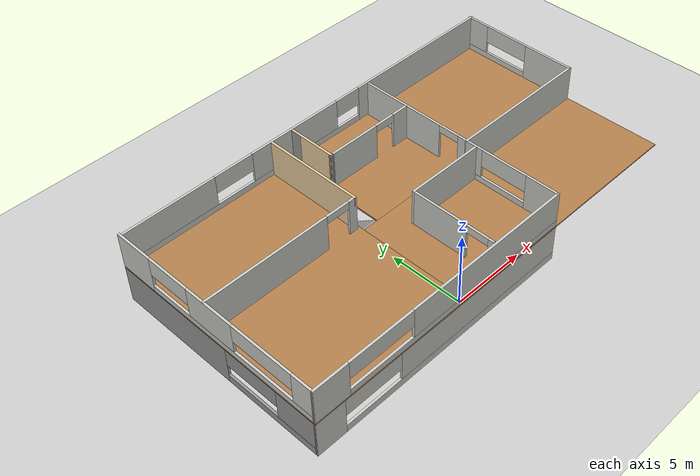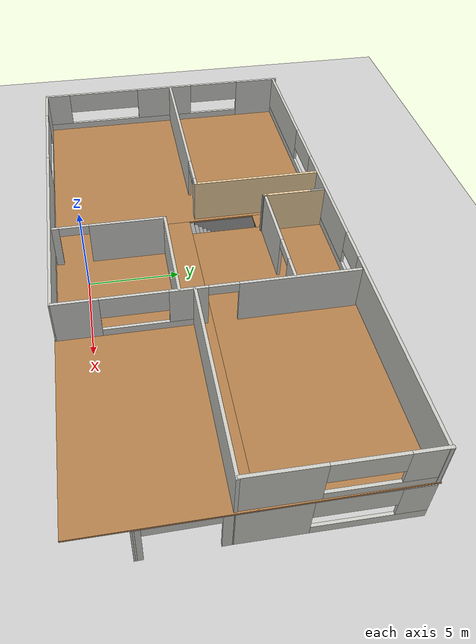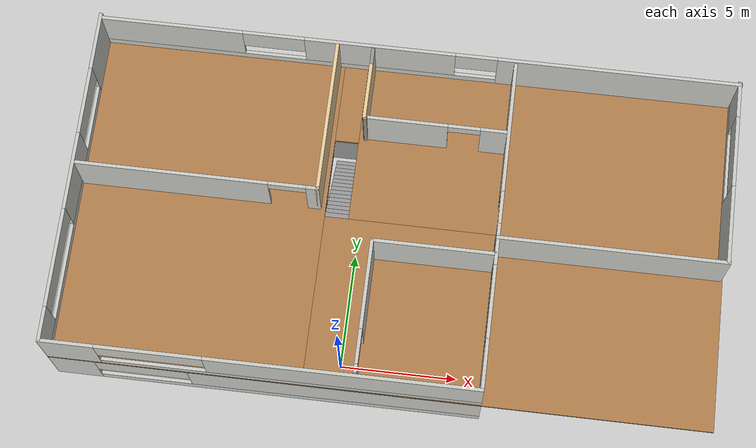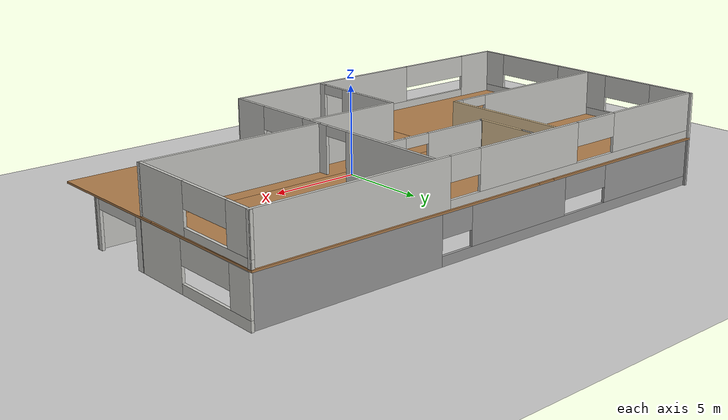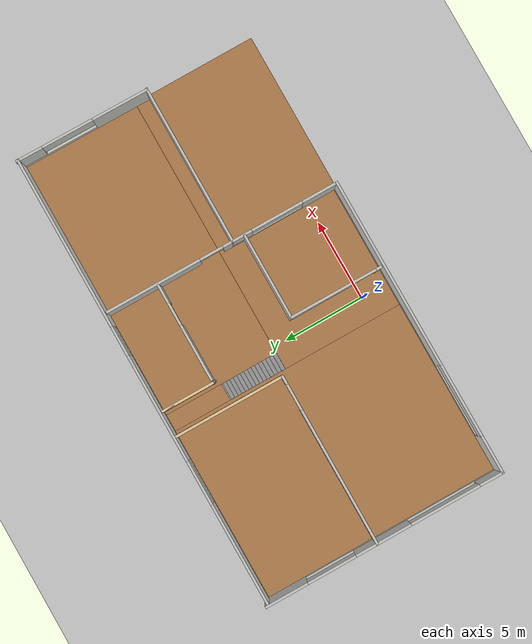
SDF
<sdf version="1.7">
 <world name="default">
  <model name="ground_plane">
   <static>1</static>
   <link name="link">
    <collision name="collision">
     <geometry><plane><normal>0 0 1</normal><size>100 100</size></plane></geometry>
     <surface>
      <contact><collide_bitmask>65535</collide_bitmask></contact>
      <friction><ode><mu>100</mu><mu2>50</mu2></ode></friction>
     </surface>
    </collision>
    <visual name="visual">
     <cast_shadows>0</cast_shadows>
     <geometry><plane><normal>0 0 1</normal><size>100 100</size></plane></geometry>
     <material>
      <script><uri>file://media/materials/scripts/gazebo.material</uri><name>Gazebo/Grey</name></script>
     </material>
    </visual>
   </link>
  </model>
  <model name="my_house">
   <pose>1.85305 5.78303 0 0 -0 0</pose>
   <link name="Floor_0">
    <pose>-0.014814 -0 2.5 0 -0 0</pose>
    <visual name="Floor_0_Visual_0">
     <pose>-8.5815 0 0.05 0 -0 0</pose>
     <geometry><box><size>10.7164 14.8085 0.1</size></box></geometry>
     <material>
      <script><uri>file://media/materials/scripts/gazebo.material</uri><name>Gazebo/Wood</name></script>
      <ambient>1 1 1 1</ambient>
     </material>
     <meta><layer>1</layer></meta>
    </visual>
    <collision name="Floor_0_Collision_0">
     <geometry><box><size>10.7164 14.8085 0.1</size></box></geometry>
     <pose>-8.5815 0 0.05 0 -0 0</pose>
    </collision>
    <visual name="Floor_0_Visual_1">
     <pose>5.35818 -3.65615 0.05 0 -0 0</pose>
     <geometry><box><size>17.163 7.49614 0.1</size></box></geometry>
     <material>
      <script><uri>file://media/materials/scripts/gazebo.material</uri><name>Gazebo/Wood</name></script>
      <ambient>1 1 1 1</ambient>
     </material>
     <meta><layer>1</layer></meta>
    </visual>
    <collision name="Floor_0_Collision_1">
     <geometry><box><size>17.163 7.49614 0.1</size></box></geometry>
     <pose>5.35818 -3.65615 0.05 0 -0 0</pose>
    </collision>
    <visual name="Floor_0_Visual_2">
     <pose>5.87276 3.74807 0.05 0 -0 0</pose>
     <geometry><box><size>16.1338 7.31231 0.1</size></box></geometry>
     <material>
      <script><uri>file://media/materials/scripts/gazebo.material</uri><name>Gazebo/Wood</name></script>
      <ambient>1 1 1 1</ambient>
     </material>
     <meta><layer>1</layer></meta>
    </visual>
    <collision name="Floor_0_Collision_2">
     <geometry><box><size>16.1338 7.31231 0.1</size></box></geometry>
     <pose>5.87276 3.74807 0.05 0 -0 0</pose>
    </collision>
    <visual name="Floor_0_Visual_3">
     <pose>-2.70874 5.51265 0.05 0 -0 0</pose>
     <geometry><box><size>1.02917 3.78314 0.1</size></box></geometry>
     <material>
      <script><uri>file://media/materials/scripts/gazebo.material</uri><name>Gazebo/Wood</name></script>
      <ambient>1 1 1 1</ambient>
     </material>
     <meta><layer>1</layer></meta>
    </visual>
    <collision name="Floor_0_Collision_3">
     <geometry><box><size>1.02917 3.78314 0.1</size></box></geometry>
     <pose>-2.70874 5.51265 0.05 0 -0 0</pose>
    </collision>
   </link>
   <link name="Stairs_0">
    <visual name="Stairs_0_Visual_0">
     <pose>-2.72356 3.50345 0.083333 0 -0 0</pose>
     <geometry><box><size>1.02917 0.235278 0.166667</size></box></geometry>
     <material>
      <script><uri>file://media/materials/scripts/gazebo.material</uri><name>Gazebo/Grey</name></script>
      <ambient>1 1 1 1</ambient>
     </material>
     <meta><layer>0</layer></meta>
    </visual>
    <collision name="Stairs_0_Collision_0">
     <geometry><box><size>1.02917 0.235278 0.166667</size></box></geometry>
     <pose>-2.72356 3.50345 0.083333 0 -0 0</pose>
    </collision>
    <visual name="Stairs_0_Visual_1">
     <pose>-2.72356 3.26817 0.25 0 -0 0</pose>
     <geometry><box><size>1.02917 0.235278 0.166667</size></box></geometry>
     <material>
      <script><uri>file://media/materials/scripts/gazebo.material</uri><name>Gazebo/Grey</name></script>
      <ambient>1 1 1 1</ambient>
     </material>
     <meta><layer>0</layer></meta>
    </visual>
    <collision name="Stairs_0_Collision_1">
     <geometry><box><size>1.02917 0.235278 0.166667</size></box></geometry>
     <pose>-2.72356 3.26817 0.25 0 -0 0</pose>
    </collision>
    <visual name="Stairs_0_Visual_2">
     <pose>-2.72356 3.03289 0.416667 0 -0 0</pose>
     <geometry><box><size>1.02917 0.235278 0.166667</size></box></geometry>
     <material>
      <script><uri>file://media/materials/scripts/gazebo.material</uri><name>Gazebo/Grey</name></script>
      <ambient>1 1 1 1</ambient>
     </material>
     <meta><layer>0</layer></meta>
    </visual>
    <collision name="Stairs_0_Collision_2">
     <geometry><box><size>1.02917 0.235278 0.166667</size></box></geometry>
     <pose>-2.72356 3.03289 0.416667 0 -0 0</pose>
    </collision>
    <visual name="Stairs_0_Visual_3">
     <pose>-2.72356 2.79761 0.583333 0 -0 0</pose>
     <geometry><box><size>1.02917 0.235278 0.166667</size></box></geometry>
     <material>
      <script><uri>file://media/materials/scripts/gazebo.material</uri><name>Gazebo/Grey</name></script>
      <ambient>1 1 1 1</ambient>
     </material>
     <meta><layer>0</layer></meta>
    </visual>
    <collision name="Stairs_0_Collision_3">
     <geometry><box><size>1.02917 0.235278 0.166667</size></box></geometry>
     <pose>-2.72356 2.79761 0.583333 0 -0 0</pose>
    </collision>
    <visual name="Stairs_0_Visual_4">
     <pose>-2.72356 2.56233 0.75 0 -0 0</pose>
     <geometry><box><size>1.02917 0.235278 0.166667</size></box></geometry>
     <material>
      <script><uri>file://media/materials/scripts/gazebo.material</uri><name>Gazebo/Grey</name></script>
      <ambient>1 1 1 1</ambient>
     </material>
     <meta><layer>0</layer></meta>
    </visual>
    <collision name="Stairs_0_Collision_4">
     <geometry><box><size>1.02917 0.235278 0.166667</size></box></geometry>
     <pose>-2.72356 2.56233 0.75 0 -0 0</pose>
    </collision>
    <visual name="Stairs_0_Visual_5">
     <pose>-2.72356 2.32706 0.916667 0 -0 0</pose>
     <geometry><box><size>1.02917 0.235278 0.166667</size></box></geometry>
     <material>
      <script><uri>file://media/materials/scripts/gazebo.material</uri><name>Gazebo/Grey</name></script>
      <ambient>1 1 1 1</ambient>
     </material>
     <meta><layer>0</layer></meta>
    </visual>
    <collision name="Stairs_0_Collision_5">
     <geometry><box><size>1.02917 0.235278 0.166667</size></box></geometry>
     <pose>-2.72356 2.32706 0.916667 0 -0 0</pose>
    </collision>
    <visual name="Stairs_0_Visual_6">
     <pose>-2.72356 2.09178 1.08333 0 -0 0</pose>
     <geometry><box><size>1.02917 0.235278 0.166667</size></box></geometry>
     <material>
      <script><uri>file://media/materials/scripts/gazebo.material</uri><name>Gazebo/Grey</name></script>
      <ambient>1 1 1 1</ambient>
     </material>
     <meta><layer>0</layer></meta>
    </visual>
    <collision name="Stairs_0_Collision_6">
     <geometry><box><size>1.02917 0.235278 0.166667</size></box></geometry>
     <pose>-2.72356 2.09178 1.08333 0 -0 0</pose>
    </collision>
    <visual name="Stairs_0_Visual_7">
     <pose>-2.72356 1.8565 1.25 0 -0 0</pose>
     <geometry><box><size>1.02917 0.235278 0.166667</size></box></geometry>
     <material>
      <script><uri>file://media/materials/scripts/gazebo.material</uri><name>Gazebo/Grey</name></script>
      <ambient>1 1 1 1</ambient>
     </material>
     <meta><layer>0</layer></meta>
    </visual>
    <collision name="Stairs_0_Collision_7">
     <geometry><box><size>1.02917 0.235278 0.166667</size></box></geometry>
     <pose>-2.72356 1.8565 1.25 0 -0 0</pose>
    </collision>
    <visual name="Stairs_0_Visual_8">
     <pose>-2.72356 1.62122 1.41667 0 -0 0</pose>
     <geometry><box><size>1.02917 0.235278 0.166667</size></box></geometry>
     <material>
      <script><uri>file://media/materials/scripts/gazebo.material</uri><name>Gazebo/Grey</name></script>
      <ambient>1 1 1 1</ambient>
     </material>
     <meta><layer>0</layer></meta>
    </visual>
    <collision name="Stairs_0_Collision_8">
     <geometry><box><size>1.02917 0.235278 0.166667</size></box></geometry>
     <pose>-2.72356 1.62122 1.41667 0 -0 0</pose>
    </collision>
    <visual name="Stairs_0_Visual_9">
     <pose>-2.72356 1.38594 1.58333 0 -0 0</pose>
     <geometry><box><size>1.02917 0.235278 0.166667</size></box></geometry>
     <material>
      <script><uri>file://media/materials/scripts/gazebo.material</uri><name>Gazebo/Grey</name></script>
      <ambient>1 1 1 1</ambient>
     </material>
     <meta><layer>0</layer></meta>
    </visual>
    <collision name="Stairs_0_Collision_9">
     <geometry><box><size>1.02917 0.235278 0.166667</size></box></geometry>
     <pose>-2.72356 1.38594 1.58333 0 -0 0</pose>
    </collision>
    <visual name="Stairs_0_Visual_10">
     <pose>-2.72356 1.15067 1.75 0 -0 0</pose>
     <geometry><box><size>1.02917 0.235278 0.166667</size></box></geometry>
     <material>
      <script><uri>file://media/materials/scripts/gazebo.material</uri><name>Gazebo/Grey</name></script>
      <ambient>1 1 1 1</ambient>
     </material>
     <meta><layer>0</layer></meta>
    </visual>
    <collision name="Stairs_0_Collision_10">
     <geometry><box><size>1.02917 0.235278 0.166667</size></box></geometry>
     <pose>-2.72356 1.15067 1.75 0 -0 0</pose>
    </collision>
    <visual name="Stairs_0_Visual_11">
     <pose>-2.72356 0.91539 1.91667 0 -0 0</pose>
     <geometry><box><size>1.02917 0.235278 0.166667</size></box></geometry>
     <material>
      <script><uri>file://media/materials/scripts/gazebo.material</uri><name>Gazebo/Grey</name></script>
      <ambient>1 1 1 1</ambient>
     </material>
     <meta><layer>0</layer></meta>
    </visual>
    <collision name="Stairs_0_Collision_11">
     <geometry><box><size>1.02917 0.235278 0.166667</size></box></geometry>
     <pose>-2.72356 0.91539 1.91667 0 -0 0</pose>
    </collision>
    <visual name="Stairs_0_Visual_12">
     <pose>-2.72356 0.680112 2.08333 0 -0 0</pose>
     <geometry><box><size>1.02917 0.235278 0.166667</size></box></geometry>
     <material>
      <script><uri>file://media/materials/scripts/gazebo.material</uri><name>Gazebo/Grey</name></script>
      <ambient>1 1 1 1</ambient>
     </material>
     <meta><layer>0</layer></meta>
    </visual>
    <collision name="Stairs_0_Collision_12">
     <geometry><box><size>1.02917 0.235278 0.166667</size></box></geometry>
     <pose>-2.72356 0.680112 2.08333 0 -0 0</pose>
    </collision>
    <visual name="Stairs_0_Visual_13">
     <pose>-2.72356 0.444834 2.25 0 -0 0</pose>
     <geometry><box><size>1.02917 0.235278 0.166667</size></box></geometry>
     <material>
      <script><uri>file://media/materials/scripts/gazebo.material</uri><name>Gazebo/Grey</name></script>
      <ambient>1 1 1 1</ambient>
     </material>
     <meta><layer>0</layer></meta>
    </visual>
    <collision name="Stairs_0_Collision_13">
     <geometry><box><size>1.02917 0.235278 0.166667</size></box></geometry>
     <pose>-2.72356 0.444834 2.25 0 -0 0</pose>
    </collision>
    <visual name="Stairs_0_Visual_14">
     <pose>-2.72356 0.209557 2.41667 0 -0 0</pose>
     <geometry><box><size>1.02917 0.235278 0.166667</size></box></geometry>
     <material>
      <script><uri>file://media/materials/scripts/gazebo.material</uri><name>Gazebo/Grey</name></script>
      <ambient>1 1 1 1</ambient>
     </material>
     <meta><layer>0</layer></meta>
    </visual>
    <collision name="Stairs_0_Collision_14">
     <geometry><box><size>1.02917 0.235278 0.166667</size></box></geometry>
     <pose>-2.72356 0.209557 2.41667 0 -0 0</pose>
    </collision>
   </link>
   <link name="Wall_11">
    <pose>-13.8794 0.029226 0 0 -0 -1.5708</pose>
    <visual name="Wall_11_Visual_0">
     <pose>-3.26077 0 1.25 0 -0 0</pose>
     <geometry><box><size>8.22847 0.15 2.5</size></box></geometry>
     <material>
      <script><uri>file://media/materials/scripts/gazebo.material</uri><name>Gazebo/Grey</name></script>
      <ambient>1 1 1 1</ambient>
     </material>
     <meta><layer>0</layer></meta>
    </visual>
    <collision name="Wall_11_Collision_0">
     <geometry><box><size>8.22847 0.15 2.5</size></box></geometry>
     <pose>-3.26077 0 1.25 0 -0 0</pose>
    </collision>
    <visual name="Wall_11_Visual_1">
     <pose>4.11423 0 0.25 0 -0 0</pose>
     <geometry><box><size>6.52153 0.15 0.5</size></box></geometry>
     <material>
      <script><uri>file://media/materials/scripts/gazebo.material</uri><name>Gazebo/Grey</name></script>
      <ambient>1 1 1 1</ambient>
     </material>
     <meta><layer>0</layer></meta>
    </visual>
    <collision name="Wall_11_Collision_1">
     <geometry><box><size>6.52153 0.15 0.5</size></box></geometry>
     <pose>4.11423 0 0.25 0 -0 0</pose>
    </collision>
    <visual name="Wall_11_Visual_2">
     <pose>5.98709 0 1.5 0 -0 0</pose>
     <geometry><box><size>2.77581 0.15 2</size></box></geometry>
     <material>
      <script><uri>file://media/materials/scripts/gazebo.material</uri><name>Gazebo/Grey</name></script>
      <ambient>1 1 1 1</ambient>
     </material>
     <meta><layer>0</layer></meta>
    </visual>
    <collision name="Wall_11_Collision_2">
     <geometry><box><size>2.77581 0.15 2</size></box></geometry>
     <pose>5.98709 0 1.5 0 -0 0</pose>
    </collision>
    <visual name="Wall_11_Visual_3">
     <pose>2.72633 0 1.9 0 -0 0</pose>
     <geometry><box><size>3.74572 0.15 1.2</size></box></geometry>
     <material>
      <script><uri>file://media/materials/scripts/gazebo.material</uri><name>Gazebo/Grey</name></script>
      <ambient>1 1 1 1</ambient>
     </material>
     <meta><layer>0</layer></meta>
    </visual>
    <collision name="Wall_11_Collision_3">
     <geometry><box><size>3.74572 0.15 1.2</size></box></geometry>
     <pose>2.72633 0 1.9 0 -0 0</pose>
    </collision>
   </link>
   <link name="Wall_12">
    <pose>-4.82938 -7.31452 0 0 -0 0.001611</pose>
    <visual name="Wall_12_Visual_0">
     <pose>-8.14277 0 1.25 0 -0 0</pose>
     <geometry><box><size>1.96449 0.15 2.5</size></box></geometry>
     <material>
      <script><uri>file://media/materials/scripts/gazebo.material</uri><name>Gazebo/CeilingTiled</name></script>
      <ambient>0.760784 0.662745 0.627451 1</ambient>
     </material>
     <meta><layer>0</layer></meta>
    </visual>
    <collision name="Wall_12_Collision_0">
     <geometry><box><size>1.96449 0.15 2.5</size></box></geometry>
     <pose>-8.14277 0 1.25 0 -0 0</pose>
    </collision>
    <visual name="Wall_12_Visual_1">
     <pose>0.982245 0 0.25 0 -0 0</pose>
     <geometry><box><size>16.2855 0.15 0.5</size></box></geometry>
     <material>
      <script><uri>file://media/materials/scripts/gazebo.material</uri><name>Gazebo/CeilingTiled</name></script>
      <ambient>0.760784 0.662745 0.627451 1</ambient>
     </material>
     <meta><layer>0</layer></meta>
    </visual>
    <collision name="Wall_12_Collision_1">
     <geometry><box><size>16.2855 0.15 0.5</size></box></geometry>
     <pose>0.982245 0 0.25 0 -0 0</pose>
    </collision>
    <visual name="Wall_12_Visual_2">
     <pose>2.94253 0 1.5 0 -0 0</pose>
     <geometry><box><size>12.365 0.15 2</size></box></geometry>
     <material>
      <script><uri>file://media/materials/scripts/gazebo.material</uri><name>Gazebo/CeilingTiled</name></script>
      <ambient>0.760784 0.662745 0.627451 1</ambient>
     </material>
     <meta><layer>0</layer></meta>
    </visual>
    <collision name="Wall_12_Collision_2">
     <geometry><box><size>12.365 0.15 2</size></box></geometry>
     <pose>2.94253 0 1.5 0 -0 0</pose>
    </collision>
    <visual name="Wall_12_Visual_3">
     <pose>-5.20024 0 1.9 0 -0 0</pose>
     <geometry><box><size>3.92057 0.15 1.2</size></box></geometry>
     <material>
      <script><uri>file://media/materials/scripts/gazebo.material</uri><name>Gazebo/CeilingTiled</name></script>
      <ambient>0.760784 0.662745 0.627451 1</ambient>
     </material>
     <meta><layer>0</layer></meta>
    </visual>
    <collision name="Wall_12_Collision_3">
     <geometry><box><size>3.92057 0.15 1.2</size></box></geometry>
     <pose>-5.20024 0 1.9 0 -0 0</pose>
    </collision>
   </link>
   <link name="Wall_13">
    <pose>4.22062 -4.04369 0 0 -0 1.5708</pose>
    <visual name="Wall_13_Visual_0">
     <pose>-3.02669 0 1.25 0 -0 0</pose>
     <geometry><box><size>0.492455 0.15 2.5</size></box></geometry>
     <material>
      <script><uri>file://media/materials/scripts/gazebo.material</uri><name>Gazebo/CeilingTiled</name></script>
      <ambient>0.760784 0.662745 0.627451 1</ambient>
     </material>
     <meta><layer>0</layer></meta>
    </visual>
    <collision name="Wall_13_Collision_0">
     <geometry><box><size>0.492455 0.15 2.5</size></box></geometry>
     <pose>-3.02669 0 1.25 0 -0 0</pose>
    </collision>
    <visual name="Wall_13_Visual_1">
     <pose>0.929552 0 1.25 0 -0 0</pose>
     <geometry><box><size>4.68674 0.15 2.5</size></box></geometry>
     <material>
      <script><uri>file://media/materials/scripts/gazebo.material</uri><name>Gazebo/CeilingTiled</name></script>
      <ambient>0.760784 0.662745 0.627451 1</ambient>
     </material>
     <meta><layer>0</layer></meta>
    </visual>
    <collision name="Wall_13_Collision_1">
     <geometry><box><size>4.68674 0.15 2.5</size></box></geometry>
     <pose>0.929552 0 1.25 0 -0 0</pose>
    </collision>
    <visual name="Wall_13_Visual_2">
     <pose>-2.09714 0 2.25 0 -0 0</pose>
     <geometry><box><size>1.36665 0.15 0.5</size></box></geometry>
     <material>
      <script><uri>file://media/materials/scripts/gazebo.material</uri><name>Gazebo/CeilingTiled</name></script>
      <ambient>0.760784 0.662745 0.627451 1</ambient>
     </material>
     <meta><layer>0</layer></meta>
    </visual>
    <collision name="Wall_13_Collision_2">
     <geometry><box><size>1.36665 0.15 0.5</size></box></geometry>
     <pose>-2.09714 0 2.25 0 -0 0</pose>
    </collision>
   </link>
   <link name="Wall_14">
    <collision name="Wall_14_Collision">
     <geometry><box><size>9.7504 0.15 2.5</size></box></geometry>
     <pose>0 0 1.25 0 -0 0</pose>
    </collision>
    <visual name="Wall_14_Visual">
     <pose>0 0 1.25 0 -0 0</pose>
     <geometry><box><size>9.7504 0.15 2.5</size></box></geometry>
     <material>
      <script><uri>file://media/materials/scripts/gazebo.material</uri><name>Gazebo/Grey</name></script>
      <ambient>1 1 1 1</ambient>
     </material>
     <meta><layer>0</layer></meta>
    </visual>
    <pose>9.02062 -0.802019 0 0 -0 -0.003038</pose>
   </link>
   <link name="Wall_15">
    <pose>13.8498 3.19589 0 0 -0 1.56353</pose>
    <visual name="Wall_15_Visual_0">
     <pose>-2.46795 0 1.25 0 -0 0</pose>
     <geometry><box><size>3.23931 0.15 2.5</size></box></geometry>
     <material>
      <script><uri>file://media/materials/scripts/gazebo.material</uri><name>Gazebo/CeilingTiled</name></script>
      <ambient>0.760784 0.662745 0.627451 1</ambient>
     </material>
     <meta><layer>0</layer></meta>
    </visual>
    <collision name="Wall_15_Collision_0">
     <geometry><box><size>3.23931 0.15 2.5</size></box></geometry>
     <pose>-2.46795 0 1.25 0 -0 0</pose>
    </collision>
    <visual name="Wall_15_Visual_1">
     <pose>1.61965 0 0.25 0 -0 0</pose>
     <geometry><box><size>4.9359 0.15 0.5</size></box></geometry>
     <material>
      <script><uri>file://media/materials/scripts/gazebo.material</uri><name>Gazebo/CeilingTiled</name></script>
      <ambient>0.760784 0.662745 0.627451 1</ambient>
     </material>
     <meta><layer>0</layer></meta>
    </visual>
    <collision name="Wall_15_Collision_1">
     <geometry><box><size>4.9359 0.15 0.5</size></box></geometry>
     <pose>1.61965 0 0.25 0 -0 0</pose>
    </collision>
    <visual name="Wall_15_Visual_2">
     <pose>3.38966 0 1.5 0 -0 0</pose>
     <geometry><box><size>1.39589 0.15 2</size></box></geometry>
     <material>
      <script><uri>file://media/materials/scripts/gazebo.material</uri><name>Gazebo/CeilingTiled</name></script>
      <ambient>0.760784 0.662745 0.627451 1</ambient>
     </material>
     <meta><layer>0</layer></meta>
    </visual>
    <collision name="Wall_15_Collision_2">
     <geometry><box><size>1.39589 0.15 2</size></box></geometry>
     <pose>3.38966 0 1.5 0 -0 0</pose>
    </collision>
    <visual name="Wall_15_Visual_3">
     <pose>0.921706 0 1.9 0 -0 0</pose>
     <geometry><box><size>3.54 0.15 1.2</size></box></geometry>
     <material>
      <script><uri>file://media/materials/scripts/gazebo.material</uri><name>Gazebo/CeilingTiled</name></script>
      <ambient>0.760784 0.662745 0.627451 1</ambient>
     </material>
     <meta><layer>0</layer></meta>
    </visual>
    <collision name="Wall_15_Collision_3">
     <geometry><box><size>3.54 0.15 1.2</size></box></geometry>
     <pose>0.921706 0 1.9 0 -0 0</pose>
    </collision>
   </link>
   <link name="Wall_16">
    <pose>0.020624 7.17922 0 0 -0 3.13948</pose>
    <visual name="Wall_16_Visual_0">
     <pose>-8.84249 0 1.25 0 -0 0</pose>
     <geometry><box><size>10.0651 0.15 2.5</size></box></geometry>
     <material>
      <script><uri>file://media/materials/scripts/gazebo.material</uri><name>Gazebo/Grey</name></script>
      <ambient>1 1 1 1</ambient>
     </material>
     <meta><layer>0</layer></meta>
    </visual>
    <collision name="Wall_16_Collision_0">
     <geometry><box><size>10.0651 0.15 2.5</size></box></geometry>
     <pose>-8.84249 0 1.25 0 -0 0</pose>
    </collision>
    <visual name="Wall_16_Visual_1">
     <pose>5.03254 0 0.25 0 -0 0</pose>
     <geometry><box><size>17.685 0.15 0.5</size></box></geometry>
     <material>
      <script><uri>file://media/materials/scripts/gazebo.material</uri><name>Gazebo/Grey</name></script>
      <ambient>1 1 1 1</ambient>
     </material>
     <meta><layer>0</layer></meta>
    </visual>
    <collision name="Wall_16_Collision_1">
     <geometry><box><size>17.685 0.15 0.5</size></box></geometry>
     <pose>5.03254 0 0.25 0 -0 0</pose>
    </collision>
    <visual name="Wall_16_Visual_2">
     <pose>1.13272 0 1.5 0 -0 0</pose>
     <geometry><box><size>6.24364 0.15 2</size></box></geometry>
     <material>
      <script><uri>file://media/materials/scripts/gazebo.material</uri><name>Gazebo/Grey</name></script>
      <ambient>1 1 1 1</ambient>
     </material>
     <meta><layer>0</layer></meta>
    </visual>
    <collision name="Wall_16_Collision_2">
     <geometry><box><size>6.24364 0.15 2</size></box></geometry>
     <pose>1.13272 0 1.5 0 -0 0</pose>
    </collision>
    <visual name="Wall_16_Visual_3">
     <pose>10.5439 0 1.5 0 -0 0</pose>
     <geometry><box><size>6.66225 0.15 2</size></box></geometry>
     <material>
      <script><uri>file://media/materials/scripts/gazebo.material</uri><name>Gazebo/Grey</name></script>
      <ambient>1 1 1 1</ambient>
     </material>
     <meta><layer>0</layer></meta>
    </visual>
    <collision name="Wall_16_Collision_3">
     <geometry><box><size>6.66225 0.15 2</size></box></geometry>
     <pose>10.5439 0 1.5 0 -0 0</pose>
    </collision>
    <visual name="Wall_16_Visual_4">
     <pose>-2.89953 0 1.9 0 -0 0</pose>
     <geometry><box><size>1.82085 0.15 1.2</size></box></geometry>
     <material>
      <script><uri>file://media/materials/scripts/gazebo.material</uri><name>Gazebo/Grey</name></script>
      <ambient>1 1 1 1</ambient>
     </material>
     <meta><layer>0</layer></meta>
    </visual>
    <collision name="Wall_16_Collision_4">
     <geometry><box><size>1.82085 0.15 1.2</size></box></geometry>
     <pose>-2.89953 0 1.9 0 -0 0</pose>
    </collision>
    <visual name="Wall_16_Visual_5">
     <pose>5.73366 0 1.9 0 -0 0</pose>
     <geometry><box><size>2.95825 0.15 1.2</size></box></geometry>
     <material>
      <script><uri>file://media/materials/scripts/gazebo.material</uri><name>Gazebo/Grey</name></script>
      <ambient>1 1 1 1</ambient>
     </material>
     <meta><layer>0</layer></meta>
    </visual>
    <collision name="Wall_16_Collision_5">
     <geometry><box><size>2.95825 0.15 1.2</size></box></geometry>
     <pose>5.73366 0 1.9 0 -0 0</pose>
    </collision>
   </link>
   <link name="Wall_22">
    <collision name="Wall_22_Collision">
     <geometry><box><size>9.75 0.15 2.5</size></box></geometry>
     <pose>0 0 1.25 0 -0 0</pose>
    </collision>
    <visual name="Wall_22_Visual">
     <pose>0 0 1.25 0 -0 0</pose>
     <geometry><box><size>9.75 0.15 2.5</size></box></geometry>
     <material>
      <script><uri>file://media/materials/scripts/gazebo.material</uri><name>Gazebo/CeilingTiled</name></script>
      <ambient>0.760784 0.662745 0.627451 1</ambient>
     </material>
     <meta><layer>0</layer></meta>
    </visual>
    <pose>9.06159 -4.72033 0 0 -0 0</pose>
   </link>
   <link name="Wall_24">
    <pose>13.8411 -2.76847 0 0 -0 1.58129</pose>
    <visual name="Wall_24_Visual_0">
     <pose>-1.82986 0 1.25 0 -0 0</pose>
     <geometry><box><size>0.394219 0.15 2.5</size></box></geometry>
     <material>
      <script><uri>file://media/materials/scripts/gazebo.material</uri><name>Gazebo/CeilingTiled</name></script>
      <ambient>0.760784 0.662745 0.627451 1</ambient>
     </material>
     <meta><layer>0</layer></meta>
    </visual>
    <collision name="Wall_24_Collision_0">
     <geometry><box><size>0.394219 0.15 2.5</size></box></geometry>
     <pose>-1.82986 0 1.25 0 -0 0</pose>
    </collision>
    <visual name="Wall_24_Visual_1">
     <pose>1.77114 0 1.25 0 -0 0</pose>
     <geometry><box><size>0.511651 0.15 2.5</size></box></geometry>
     <material>
      <script><uri>file://media/materials/scripts/gazebo.material</uri><name>Gazebo/CeilingTiled</name></script>
      <ambient>0.760784 0.662745 0.627451 1</ambient>
     </material>
     <meta><layer>0</layer></meta>
    </visual>
    <collision name="Wall_24_Collision_1">
     <geometry><box><size>0.511651 0.15 2.5</size></box></geometry>
     <pose>1.77114 0 1.25 0 -0 0</pose>
    </collision>
    <visual name="Wall_24_Visual_2">
     <pose>-0.058716 0 2.25 0 -0 0</pose>
     <geometry><box><size>3.14807 0.15 0.5</size></box></geometry>
     <material>
      <script><uri>file://media/materials/scripts/gazebo.material</uri><name>Gazebo/CeilingTiled</name></script>
      <ambient>0.760784 0.662745 0.627451 1</ambient>
     </material>
     <meta><layer>0</layer></meta>
    </visual>
    <collision name="Wall_24_Collision_2">
     <geometry><box><size>3.14807 0.15 0.5</size></box></geometry>
     <pose>-0.058716 0 2.25 0 -0 0</pose>
    </collision>
   </link>
   <link name="Wall_26">
    <pose>-8.67521 0.471138 0 0 -0 0</pose>
    <visual name="Wall_26_Visual_0">
     <pose>-0.967881 0 1.25 0 -0 0</pose>
     <geometry><box><size>8.56424 0.15 2.5</size></box></geometry>
     <material>
      <script><uri>file://media/materials/scripts/gazebo.material</uri><name>Gazebo/Grey</name></script>
      <ambient>1 1 1 1</ambient>
     </material>
     <meta><layer>0</layer></meta>
    </visual>
    <collision name="Wall_26_Collision_0">
     <geometry><box><size>8.56424 0.15 2.5</size></box></geometry>
     <pose>-0.967881 0 1.25 0 -0 0</pose>
    </collision>
    <visual name="Wall_26_Visual_1">
     <pose>4.95086 0 1.25 0 -0 0</pose>
     <geometry><box><size>0.598278 0.15 2.5</size></box></geometry>
     <material>
      <script><uri>file://media/materials/scripts/gazebo.material</uri><name>Gazebo/Grey</name></script>
      <ambient>1 1 1 1</ambient>
     </material>
     <meta><layer>0</layer></meta>
    </visual>
    <collision name="Wall_26_Collision_1">
     <geometry><box><size>0.598278 0.15 2.5</size></box></geometry>
     <pose>4.95086 0 1.25 0 -0 0</pose>
    </collision>
    <visual name="Wall_26_Visual_2">
     <pose>3.98298 0 2.25 0 -0 0</pose>
     <geometry><box><size>1.33748 0.15 0.5</size></box></geometry>
     <material>
      <script><uri>file://media/materials/scripts/gazebo.material</uri><name>Gazebo/Grey</name></script>
      <ambient>1 1 1 1</ambient>
     </material>
     <meta><layer>0</layer></meta>
    </visual>
    <collision name="Wall_26_Collision_2">
     <geometry><box><size>1.33748 0.15 0.5</size></box></geometry>
     <pose>3.98298 0 2.25 0 -0 0</pose>
    </collision>
   </link>
   <link name="Wall_27">
    <collision name="Wall_27_Collision">
     <geometry><box><size>6.75 0.15 2.5</size></box></geometry>
     <pose>0 0 1.25 0 -0 0</pose>
    </collision>
    <visual name="Wall_27_Visual">
     <pose>0 0 1.25 0 -0 0</pose>
     <geometry><box><size>6.75 0.15 2.5</size></box></geometry>
     <material>
      <script><uri>file://media/materials/scripts/gazebo.material</uri><name>Gazebo/Grey</name></script>
      <ambient>1 1 1 1</ambient>
     </material>
     <meta><layer>0</layer></meta>
    </visual>
    <pose>-3.50021 3.77114 0 0 -0 1.5708</pose>
   </link>
   <link name="Wall_29">
    <pose>4.22062 3.12298 0 0 -0 1.5708</pose>
    <visual name="Wall_29_Visual_0">
     <pose>-3.68396 0 1.25 0 -0 0</pose>
     <geometry><box><size>0.602909 0.15 2.5</size></box></geometry>
     <material>
      <script><uri>file://media/materials/scripts/gazebo.material</uri><name>Gazebo/Grey</name></script>
      <ambient>1 1 1 1</ambient>
     </material>
     <meta><layer>0</layer></meta>
    </visual>
    <collision name="Wall_29_Collision_0">
     <geometry><box><size>0.602909 0.15 2.5</size></box></geometry>
     <pose>-3.68396 0 1.25 0 -0 0</pose>
    </collision>
    <visual name="Wall_29_Visual_1">
     <pose>0.955613 0 1.25 0 -0 0</pose>
     <geometry><box><size>6.05961 0.15 2.5</size></box></geometry>
     <material>
      <script><uri>file://media/materials/scripts/gazebo.material</uri><name>Gazebo/Grey</name></script>
      <ambient>1 1 1 1</ambient>
     </material>
     <meta><layer>0</layer></meta>
    </visual>
    <collision name="Wall_29_Collision_1">
     <geometry><box><size>6.05961 0.15 2.5</size></box></geometry>
     <pose>0.955613 0 1.25 0 -0 0</pose>
    </collision>
    <visual name="Wall_29_Visual_2">
     <pose>-2.72835 0 2.25 0 -0 0</pose>
     <geometry><box><size>1.30832 0.15 0.5</size></box></geometry>
     <material>
      <script><uri>file://media/materials/scripts/gazebo.material</uri><name>Gazebo/Grey</name></script>
      <ambient>1 1 1 1</ambient>
     </material>
     <meta><layer>0</layer></meta>
    </visual>
    <collision name="Wall_29_Collision_2">
     <geometry><box><size>1.30832 0.15 0.5</size></box></geometry>
     <pose>-2.72835 0 2.25 0 -0 0</pose>
    </collision>
   </link>
   <link name="Wall_33">
    <pose>0.303556 3.91267 0 0 -0 0</pose>
    <visual name="Wall_33_Visual_0">
     <pose>-0.949078 0 1.25 0 -0 0</pose>
     <geometry><box><size>5.85184 0.15 2.5</size></box></geometry>
     <material>
      <script><uri>file://media/materials/scripts/gazebo.material</uri><name>Gazebo/Grey</name></script>
      <ambient>1 1 1 1</ambient>
     </material>
     <meta><layer>0</layer></meta>
    </visual>
    <collision name="Wall_33_Collision_0">
     <geometry><box><size>5.85184 0.15 2.5</size></box></geometry>
     <pose>-0.949078 0 1.25 0 -0 0</pose>
    </collision>
    <visual name="Wall_33_Visual_1">
     <pose>3.5655 0 1.25 0 -0 0</pose>
     <geometry><box><size>0.619005 0.15 2.5</size></box></geometry>
     <material>
      <script><uri>file://media/materials/scripts/gazebo.material</uri><name>Gazebo/Grey</name></script>
      <ambient>1 1 1 1</ambient>
     </material>
     <meta><layer>0</layer></meta>
    </visual>
    <collision name="Wall_33_Collision_1">
     <geometry><box><size>0.619005 0.15 2.5</size></box></geometry>
     <pose>3.5655 0 1.25 0 -0 0</pose>
    </collision>
    <visual name="Wall_33_Visual_2">
     <pose>2.61642 0 2.25 0 -0 0</pose>
     <geometry><box><size>1.27915 0.15 0.5</size></box></geometry>
     <material>
      <script><uri>file://media/materials/scripts/gazebo.material</uri><name>Gazebo/Grey</name></script>
      <ambient>1 1 1 1</ambient>
     </material>
     <meta><layer>0</layer></meta>
    </visual>
    <collision name="Wall_33_Collision_2">
     <geometry><box><size>1.27915 0.15 0.5</size></box></geometry>
     <pose>2.61642 0 2.25 0 -0 0</pose>
    </collision>
   </link>
   <link name="Wall_36">
    <pose>-13.8794 0.029226 2.5 0 -0 -1.5708</pose>
    <visual name="Wall_36_Visual_0">
     <pose>-6.06255 0 1.25 0 -0 0</pose>
     <geometry><box><size>2.62491 0.15 2.5</size></box></geometry>
     <material>
      <script><uri>file://media/materials/scripts/gazebo.material</uri><name>Gazebo/CeilingTiled</name></script>
      <ambient>0.921569 0.807843 0.615686 1</ambient>
     </material>
     <meta><layer>1</layer></meta>
    </visual>
    <collision name="Wall_36_Collision_0">
     <geometry><box><size>2.62491 0.15 2.5</size></box></geometry>
     <pose>-6.06255 0 1.25 0 -0 0</pose>
    </collision>
    <visual name="Wall_36_Visual_1">
     <pose>1.31245 0 0.25 0 -0 0</pose>
     <geometry><box><size>12.1251 0.15 0.5</size></box></geometry>
     <material>
      <script><uri>file://media/materials/scripts/gazebo.material</uri><name>Gazebo/CeilingTiled</name></script>
      <ambient>0.921569 0.807843 0.615686 1</ambient>
     </material>
     <meta><layer>1</layer></meta>
    </visual>
    <collision name="Wall_36_Collision_1">
     <geometry><box><size>12.1251 0.15 0.5</size></box></geometry>
     <pose>1.31245 0 0.25 0 -0 0</pose>
    </collision>
    <visual name="Wall_36_Visual_2">
     <pose>-0.048177 0 1.5 0 -0 0</pose>
     <geometry><box><size>3.429 0.15 2</size></box></geometry>
     <material>
      <script><uri>file://media/materials/scripts/gazebo.material</uri><name>Gazebo/CeilingTiled</name></script>
      <ambient>0.921569 0.807843 0.615686 1</ambient>
     </material>
     <meta><layer>1</layer></meta>
    </visual>
    <collision name="Wall_36_Collision_2">
     <geometry><box><size>3.429 0.15 2</size></box></geometry>
     <pose>-0.048177 0 1.5 0 -0 0</pose>
    </collision>
    <visual name="Wall_36_Visual_3">
     <pose>6.65601 0 1.5 0 -0 0</pose>
     <geometry><box><size>1.43798 0.15 2</size></box></geometry>
     <material>
      <script><uri>file://media/materials/scripts/gazebo.material</uri><name>Gazebo/CeilingTiled</name></script>
      <ambient>0.921569 0.807843 0.615686 1</ambient>
     </material>
     <meta><layer>1</layer></meta>
    </visual>
    <collision name="Wall_36_Collision_3">
     <geometry><box><size>1.43798 0.15 2</size></box></geometry>
     <pose>6.65601 0 1.5 0 -0 0</pose>
    </collision>
    <visual name="Wall_36_Visual_4">
     <pose>-3.25639 0 1.9 0 -0 0</pose>
     <geometry><box><size>2.98742 0.15 1.2</size></box></geometry>
     <material>
      <script><uri>file://media/materials/scripts/gazebo.material</uri><name>Gazebo/CeilingTiled</name></script>
      <ambient>0.921569 0.807843 0.615686 1</ambient>
     </material>
     <meta><layer>1</layer></meta>
    </visual>
    <collision name="Wall_36_Collision_4">
     <geometry><box><size>2.98742 0.15 1.2</size></box></geometry>
     <pose>-3.25639 0 1.9 0 -0 0</pose>
    </collision>
    <visual name="Wall_36_Visual_5">
     <pose>3.80167 0 1.9 0 -0 0</pose>
     <geometry><box><size>4.2707 0.15 1.2</size></box></geometry>
     <material>
      <script><uri>file://media/materials/scripts/gazebo.material</uri><name>Gazebo/CeilingTiled</name></script>
      <ambient>0.921569 0.807843 0.615686 1</ambient>
     </material>
     <meta><layer>1</layer></meta>
    </visual>
    <collision name="Wall_36_Collision_5">
     <geometry><box><size>4.2707 0.15 1.2</size></box></geometry>
     <pose>3.80167 0 1.9 0 -0 0</pose>
    </collision>
   </link>
   <link name="Wall_37">
    <pose>-4.82938 -7.31452 2.5 0 -0 0.001611</pose>
    <visual name="Wall_37_Visual_0">
     <pose>-7.9606 0 1.25 0 -0 0</pose>
     <geometry><box><size>2.32882 0.15 2.5</size></box></geometry>
     <material>
      <script><uri>file://media/materials/scripts/gazebo.material</uri><name>Gazebo/CeilingTiled</name></script>
      <ambient>0.921569 0.807843 0.615686 1</ambient>
     </material>
     <meta><layer>1</layer></meta>
    </visual>
    <collision name="Wall_37_Collision_0">
     <geometry><box><size>2.32882 0.15 2.5</size></box></geometry>
     <pose>-7.9606 0 1.25 0 -0 0</pose>
    </collision>
    <visual name="Wall_37_Visual_1">
     <pose>1.16441 0 0.25 0 -0 0</pose>
     <geometry><box><size>15.9212 0.15 0.5</size></box></geometry>
     <material>
      <script><uri>file://media/materials/scripts/gazebo.material</uri><name>Gazebo/CeilingTiled</name></script>
      <ambient>0.921569 0.807843 0.615686 1</ambient>
     </material>
     <meta><layer>1</layer></meta>
    </visual>
    <collision name="Wall_37_Collision_1">
     <geometry><box><size>15.9212 0.15 0.5</size></box></geometry>
     <pose>1.16441 0 0.25 0 -0 0</pose>
    </collision>
    <visual name="Wall_37_Visual_2">
     <pose>3.3873 0 1.5 0 -0 0</pose>
     <geometry><box><size>11.4754 0.15 2</size></box></geometry>
     <material>
      <script><uri>file://media/materials/scripts/gazebo.material</uri><name>Gazebo/CeilingTiled</name></script>
      <ambient>0.921569 0.807843 0.615686 1</ambient>
     </material>
     <meta><layer>1</layer></meta>
    </visual>
    <collision name="Wall_37_Collision_2">
     <geometry><box><size>11.4754 0.15 2</size></box></geometry>
     <pose>3.3873 0 1.5 0 -0 0</pose>
    </collision>
    <visual name="Wall_37_Visual_3">
     <pose>-4.5733 0 1.9 0 -0 0</pose>
     <geometry><box><size>4.44578 0.15 1.2</size></box></geometry>
     <material>
      <script><uri>file://media/materials/scripts/gazebo.material</uri><name>Gazebo/CeilingTiled</name></script>
      <ambient>0.921569 0.807843 0.615686 1</ambient>
     </material>
     <meta><layer>1</layer></meta>
    </visual>
    <collision name="Wall_37_Collision_3">
     <geometry><box><size>4.44578 0.15 1.2</size></box></geometry>
     <pose>-4.5733 0 1.9 0 -0 0</pose>
    </collision>
   </link>
   <link name="Wall_38">
    <pose>4.22062 -4.04369 2.5 0 -0 1.5708</pose>
    <visual name="Wall_38_Visual_0">
     <pose>-2.18936 0 1.25 0 -0 0</pose>
     <geometry><box><size>2.16711 0.15 2.5</size></box></geometry>
     <material>
      <script><uri>file://media/materials/scripts/gazebo.material</uri><name>Gazebo/CeilingTiled</name></script>
      <ambient>0.921569 0.807843 0.615686 1</ambient>
     </material>
     <meta><layer>1</layer></meta>
    </visual>
    <collision name="Wall_38_Collision_0">
     <geometry><box><size>2.16711 0.15 2.5</size></box></geometry>
     <pose>-2.18936 0 1.25 0 -0 0</pose>
    </collision>
    <visual name="Wall_38_Visual_1">
     <pose>1.08356 0 0.25 0 -0 0</pose>
     <geometry><box><size>4.37873 0.15 0.5</size></box></geometry>
     <material>
      <script><uri>file://media/materials/scripts/gazebo.material</uri><name>Gazebo/CeilingTiled</name></script>
      <ambient>0.921569 0.807843 0.615686 1</ambient>
     </material>
     <meta><layer>1</layer></meta>
    </visual>
    <collision name="Wall_38_Collision_1">
     <geometry><box><size>4.37873 0.15 0.5</size></box></geometry>
     <pose>1.08356 0 0.25 0 -0 0</pose>
    </collision>
    <visual name="Wall_38_Visual_2">
     <pose>2.66476 0 1.5 0 -0 0</pose>
     <geometry><box><size>1.21632 0.15 2</size></box></geometry>
     <material>
      <script><uri>file://media/materials/scripts/gazebo.material</uri><name>Gazebo/CeilingTiled</name></script>
      <ambient>0.921569 0.807843 0.615686 1</ambient>
     </material>
     <meta><layer>1</layer></meta>
    </visual>
    <collision name="Wall_38_Collision_2">
     <geometry><box><size>1.21632 0.15 2</size></box></geometry>
     <pose>2.66476 0 1.5 0 -0 0</pose>
    </collision>
    <visual name="Wall_38_Visual_3">
     <pose>0.475398 0 1.9 0 -0 0</pose>
     <geometry><box><size>3.16241 0.15 1.2</size></box></geometry>
     <material>
      <script><uri>file://media/materials/scripts/gazebo.material</uri><name>Gazebo/CeilingTiled</name></script>
      <ambient>0.921569 0.807843 0.615686 1</ambient>
     </material>
     <meta><layer>1</layer></meta>
    </visual>
    <collision name="Wall_38_Collision_3">
     <geometry><box><size>3.16241 0.15 1.2</size></box></geometry>
     <pose>0.475398 0 1.9 0 -0 0</pose>
    </collision>
   </link>
   <link name="Wall_39">
    <collision name="Wall_39_Collision">
     <geometry><box><size>9.72083 0.15 2.5</size></box></geometry>
     <pose>0 0 1.25 0 -0 0</pose>
    </collision>
    <visual name="Wall_39_Visual">
     <pose>0 0 1.25 0 -0 0</pose>
     <geometry><box><size>9.72083 0.15 2.5</size></box></geometry>
     <material>
      <script><uri>file://media/materials/scripts/gazebo.material</uri><name>Gazebo/CeilingTiled</name></script>
      <ambient>0.921569 0.807843 0.615686 1</ambient>
     </material>
     <meta><layer>1</layer></meta>
    </visual>
    <pose>9.00604 -0.787437 2.5 0 -0 0</pose>
   </link>
   <link name="Wall_40">
    <pose>13.7915 3.28339 2.5 0 -0 1.56353</pose>
    <visual name="Wall_40_Visual_0">
     <pose>-2.38067 0 1.25 0 -0 0</pose>
     <geometry><box><size>3.41387 0.15 2.5</size></box></geometry>
     <material>
      <script><uri>file://media/materials/scripts/gazebo.material</uri><name>Gazebo/CeilingTiled</name></script>
      <ambient>1 1 1 1</ambient>
     </material>
     <meta><layer>1</layer></meta>
    </visual>
    <collision name="Wall_40_Collision_0">
     <geometry><box><size>3.41387 0.15 2.5</size></box></geometry>
     <pose>-2.38067 0 1.25 0 -0 0</pose>
    </collision>
    <visual name="Wall_40_Visual_1">
     <pose>1.70694 0 0.25 0 -0 0</pose>
     <geometry><box><size>4.76133 0.15 0.5</size></box></geometry>
     <material>
      <script><uri>file://media/materials/scripts/gazebo.material</uri><name>Gazebo/CeilingTiled</name></script>
      <ambient>1 1 1 1</ambient>
     </material>
     <meta><layer>1</layer></meta>
    </visual>
    <collision name="Wall_40_Collision_1">
     <geometry><box><size>4.76133 0.15 0.5</size></box></geometry>
     <pose>1.70694 0 0.25 0 -0 0</pose>
    </collision>
    <visual name="Wall_40_Visual_2">
     <pose>3.27321 0 1.5 0 -0 0</pose>
     <geometry><box><size>1.62879 0.15 2</size></box></geometry>
     <material>
      <script><uri>file://media/materials/scripts/gazebo.material</uri><name>Gazebo/CeilingTiled</name></script>
      <ambient>1 1 1 1</ambient>
     </material>
     <meta><layer>1</layer></meta>
    </visual>
    <collision name="Wall_40_Collision_2">
     <geometry><box><size>1.62879 0.15 2</size></box></geometry>
     <pose>3.27321 0 1.5 0 -0 0</pose>
    </collision>
    <visual name="Wall_40_Visual_3">
     <pose>0.892541 0 1.9 0 -0 0</pose>
     <geometry><box><size>3.13255 0.15 1.2</size></box></geometry>
     <material>
      <script><uri>file://media/materials/scripts/gazebo.material</uri><name>Gazebo/CeilingTiled</name></script>
      <ambient>1 1 1 1</ambient>
     </material>
     <meta><layer>1</layer></meta>
    </visual>
    <collision name="Wall_40_Collision_3">
     <geometry><box><size>3.13255 0.15 1.2</size></box></geometry>
     <pose>0.892541 0 1.9 0 -0 0</pose>
    </collision>
   </link>
   <link name="Wall_41">
    <pose>0.035206 7.22297 2.5 0 -0 -3.14054</pose>
    <visual name="Wall_41_Visual_0">
     <pose>-8.63955 0 1.25 0 -0 0</pose>
     <geometry><box><size>10.5001 0.15 2.5</size></box></geometry>
     <material>
      <script><uri>file://media/materials/scripts/gazebo.material</uri><name>Gazebo/CeilingTiled</name></script>
      <ambient>0.921569 0.807843 0.615686 1</ambient>
     </material>
     <meta><layer>1</layer></meta>
    </visual>
    <collision name="Wall_41_Collision_0">
     <geometry><box><size>10.5001 0.15 2.5</size></box></geometry>
     <pose>-8.63955 0 1.25 0 -0 0</pose>
    </collision>
    <visual name="Wall_41_Visual_1">
     <pose>5.25004 0 0.25 0 -0 0</pose>
     <geometry><box><size>17.2791 0.15 0.5</size></box></geometry>
     <material>
      <script><uri>file://media/materials/scripts/gazebo.material</uri><name>Gazebo/CeilingTiled</name></script>
      <ambient>0.921569 0.807843 0.615686 1</ambient>
     </material>
     <meta><layer>1</layer></meta>
    </visual>
    <collision name="Wall_41_Collision_1">
     <geometry><box><size>17.2791 0.15 0.5</size></box></geometry>
     <pose>5.25004 0 0.25 0 -0 0</pose>
    </collision>
    <visual name="Wall_41_Visual_2">
     <pose>1.71093 0 1.5 0 -0 0</pose>
     <geometry><box><size>6.55918 0.15 2</size></box></geometry>
     <material>
      <script><uri>file://media/materials/scripts/gazebo.material</uri><name>Gazebo/CeilingTiled</name></script>
      <ambient>0.921569 0.807843 0.615686 1</ambient>
     </material>
     <meta><layer>1</layer></meta>
    </visual>
    <collision name="Wall_41_Collision_2">
     <geometry><box><size>6.55918 0.15 2</size></box></geometry>
     <pose>1.71093 0 1.5 0 -0 0</pose>
    </collision>
    <visual name="Wall_41_Visual_3">
     <pose>10.788 0 1.5 0 -0 0</pose>
     <geometry><box><size>6.20326 0.15 2</size></box></geometry>
     <material>
      <script><uri>file://media/materials/scripts/gazebo.material</uri><name>Gazebo/CeilingTiled</name></script>
      <ambient>0.921569 0.807843 0.615686 1</ambient>
     </material>
     <meta><layer>1</layer></meta>
    </visual>
    <collision name="Wall_41_Collision_3">
     <geometry><box><size>6.20326 0.15 2</size></box></geometry>
     <pose>10.788 0 1.5 0 -0 0</pose>
    </collision>
    <visual name="Wall_41_Visual_4">
     <pose>-2.47909 0 1.9 0 -0 0</pose>
     <geometry><box><size>1.82085 0.15 1.2</size></box></geometry>
     <material>
      <script><uri>file://media/materials/scripts/gazebo.material</uri><name>Gazebo/CeilingTiled</name></script>
      <ambient>0.921569 0.807843 0.615686 1</ambient>
     </material>
     <meta><layer>1</layer></meta>
    </visual>
    <collision name="Wall_41_Collision_4">
     <geometry><box><size>1.82085 0.15 1.2</size></box></geometry>
     <pose>-2.47909 0 1.9 0 -0 0</pose>
    </collision>
    <visual name="Wall_41_Visual_5">
     <pose>6.33842 0 1.9 0 -0 0</pose>
     <geometry><box><size>2.69582 0.15 1.2</size></box></geometry>
     <material>
      <script><uri>file://media/materials/scripts/gazebo.material</uri><name>Gazebo/CeilingTiled</name></script>
      <ambient>0.921569 0.807843 0.615686 1</ambient>
     </material>
     <meta><layer>1</layer></meta>
    </visual>
    <collision name="Wall_41_Collision_5">
     <geometry><box><size>2.69582 0.15 1.2</size></box></geometry>
     <pose>6.33842 0 1.9 0 -0 0</pose>
    </collision>
   </link>
   <link name="Wall_44">
    <pose>-8.67521 0.471138 2.5 0 -0 0</pose>
    <visual name="Wall_44_Visual_0">
     <pose>-1.08454 0 1.25 0 -0 0</pose>
     <geometry><box><size>8.33091 0.15 2.5</size></box></geometry>
     <material>
      <script><uri>file://media/materials/scripts/gazebo.material</uri><name>Gazebo/CeilingTiled</name></script>
      <ambient>0.921569 0.807843 0.615686 1</ambient>
     </material>
     <meta><layer>1</layer></meta>
    </visual>
    <collision name="Wall_44_Collision_0">
     <geometry><box><size>8.33091 0.15 2.5</size></box></geometry>
     <pose>-1.08454 0 1.25 0 -0 0</pose>
    </collision>
    <visual name="Wall_44_Visual_1">
     <pose>4.96544 0 1.25 0 -0 0</pose>
     <geometry><box><size>0.569113 0.15 2.5</size></box></geometry>
     <material>
      <script><uri>file://media/materials/scripts/gazebo.material</uri><name>Gazebo/CeilingTiled</name></script>
      <ambient>0.921569 0.807843 0.615686 1</ambient>
     </material>
     <meta><layer>1</layer></meta>
    </visual>
    <collision name="Wall_44_Collision_1">
     <geometry><box><size>0.569113 0.15 2.5</size></box></geometry>
     <pose>4.96544 0 1.25 0 -0 0</pose>
    </collision>
    <visual name="Wall_44_Visual_2">
     <pose>3.8809 0 2.25 0 -0 0</pose>
     <geometry><box><size>1.59997 0.15 0.5</size></box></geometry>
     <material>
      <script><uri>file://media/materials/scripts/gazebo.material</uri><name>Gazebo/CeilingTiled</name></script>
      <ambient>0.921569 0.807843 0.615686 1</ambient>
     </material>
     <meta><layer>1</layer></meta>
    </visual>
    <collision name="Wall_44_Collision_2">
     <geometry><box><size>1.59997 0.15 0.5</size></box></geometry>
     <pose>3.8809 0 2.25 0 -0 0</pose>
    </collision>
   </link>
   <link name="Wall_45">
    <collision name="Wall_45_Collision">
     <geometry><box><size>6.75 0.15 2.5</size></box></geometry>
     <pose>0 0 1.25 0 -0 0</pose>
    </collision>
    <visual name="Wall_45_Visual">
     <pose>0 0 1.25 0 -0 0</pose>
     <geometry><box><size>6.75 0.15 2.5</size></box></geometry>
     <material>
      <script><uri>file://media/materials/scripts/gazebo.material</uri><name>Gazebo/Grey</name></script>
      <ambient>0.921569 0.807843 0.615686 1</ambient>
     </material>
     <meta><layer>1</layer></meta>
    </visual>
    <pose>-3.50021 3.77114 2.5 0 -0 1.5708</pose>
   </link>
   <link name="Wall_46">
    <pose>4.22062 3.12298 2.5 0 -0 1.5708</pose>
    <visual name="Wall_46_Visual_0">
     <pose>-3.63842 0 1.25 0 -0 0</pose>
     <geometry><box><size>0.693998 0.15 2.5</size></box></geometry>
     <material>
      <script><uri>file://media/materials/scripts/gazebo.material</uri><name>Gazebo/CeilingTiled</name></script>
      <ambient>0.921569 0.807843 0.615686 1</ambient>
     </material>
     <meta><layer>1</layer></meta>
    </visual>
    <collision name="Wall_46_Collision_0">
     <geometry><box><size>0.693998 0.15 2.5</size></box></geometry>
     <pose>-3.63842 0 1.25 0 -0 0</pose>
    </collision>
    <visual name="Wall_46_Visual_1">
     <pose>1.05949 0 1.25 0 -0 0</pose>
     <geometry><box><size>5.85186 0.15 2.5</size></box></geometry>
     <material>
      <script><uri>file://media/materials/scripts/gazebo.material</uri><name>Gazebo/CeilingTiled</name></script>
      <ambient>0.921569 0.807843 0.615686 1</ambient>
     </material>
     <meta><layer>1</layer></meta>
    </visual>
    <collision name="Wall_46_Collision_1">
     <geometry><box><size>5.85186 0.15 2.5</size></box></geometry>
     <pose>1.05949 0 1.25 0 -0 0</pose>
    </collision>
    <visual name="Wall_46_Visual_2">
     <pose>-2.57893 0 2.25 0 -0 0</pose>
     <geometry><box><size>1.42498 0.15 0.5</size></box></geometry>
     <material>
      <script><uri>file://media/materials/scripts/gazebo.material</uri><name>Gazebo/CeilingTiled</name></script>
      <ambient>0.921569 0.807843 0.615686 1</ambient>
     </material>
     <meta><layer>1</layer></meta>
    </visual>
    <collision name="Wall_46_Collision_2">
     <geometry><box><size>1.42498 0.15 0.5</size></box></geometry>
     <pose>-2.57893 0 2.25 0 -0 0</pose>
    </collision>
   </link>
   <link name="Wall_47">
    <pose>1.17856 3.91267 2.5 0 -0 0</pose>
    <visual name="Wall_47_Visual_0">
     <pose>-1.27719 0 1.25 0 -0 0</pose>
     <geometry><box><size>3.44562 0.15 2.5</size></box></geometry>
     <material>
      <script><uri>file://media/materials/scripts/gazebo.material</uri><name>Gazebo/CeilingTiled</name></script>
      <ambient>0.921569 0.807843 0.615686 1</ambient>
     </material>
     <meta><layer>1</layer></meta>
    </visual>
    <collision name="Wall_47_Collision_0">
     <geometry><box><size>3.44562 0.15 2.5</size></box></geometry>
     <pose>-1.27719 0 1.25 0 -0 0</pose>
    </collision>
    <visual name="Wall_47_Visual_1">
     <pose>2.42072 0 1.25 0 -0 0</pose>
     <geometry><box><size>1.15857 0.15 2.5</size></box></geometry>
     <material>
      <script><uri>file://media/materials/scripts/gazebo.material</uri><name>Gazebo/CeilingTiled</name></script>
      <ambient>0.921569 0.807843 0.615686 1</ambient>
     </material>
     <meta><layer>1</layer></meta>
    </visual>
    <collision name="Wall_47_Collision_1">
     <geometry><box><size>1.15857 0.15 2.5</size></box></geometry>
     <pose>2.42072 0 1.25 0 -0 0</pose>
    </collision>
    <visual name="Wall_47_Visual_2">
     <pose>1.14352 0 2.25 0 -0 0</pose>
     <geometry><box><size>1.39581 0.15 0.5</size></box></geometry>
     <material>
      <script><uri>file://media/materials/scripts/gazebo.material</uri><name>Gazebo/CeilingTiled</name></script>
      <ambient>0.921569 0.807843 0.615686 1</ambient>
     </material>
     <meta><layer>1</layer></meta>
    </visual>
    <collision name="Wall_47_Collision_2">
     <geometry><box><size>1.39581 0.15 0.5</size></box></geometry>
     <pose>1.14352 0 2.25 0 -0 0</pose>
    </collision>
   </link>
   <link name="Wall_48">
    <collision name="Wall_48_Collision">
     <geometry><box><size>0.75 0.15 2.5</size></box></geometry>
     <pose>0 0 1.25 0 -0 0</pose>
    </collision>
    <visual name="Wall_48_Visual">
     <pose>0 0 1.25 0 -0 0</pose>
     <geometry><box><size>0.75 0.15 2.5</size></box></geometry>
     <material>
      <script><uri>file://media/materials/scripts/gazebo.material</uri><name>Gazebo/Grey</name></script>
      <ambient>1 1 1 1</ambient>
     </material>
     <meta><layer>1</layer></meta>
    </visual>
    <pose>-1.95067 6.75007 2.5 0 -0 1.5708</pose>
   </link>
   <link name="Wall_49">
    <collision name="Wall_49_Collision">
     <geometry><box><size>3.25 0.15 2.5</size></box></geometry>
     <pose>0 0 1.25 0 -0 0</pose>
    </collision>
    <visual name="Wall_49_Visual">
     <pose>0 0 1.25 0 -0 0</pose>
     <geometry><box><size>3.25 0.15 2.5</size></box></geometry>
     <material>
      <script><uri>file://media/materials/scripts/gazebo.material</uri><name>Gazebo/Grey</name></script>
      <ambient>0.921569 0.807843 0.615686 1</ambient>
     </material>
     <meta><layer>1</layer></meta>
    </visual>
    <pose>-1.95067 5.50007 2.5 0 -0 -1.5708</pose>
   </link>
   <link name="Wall_50">
    <collision name="Wall_50_Collision">
     <geometry><box><size>0.25 0.15 2.5</size></box></geometry>
     <pose>0 0 1.25 0 -0 0</pose>
    </collision>
    <visual name="Wall_50_Visual">
     <pose>0 0 1.25 0 -0 0</pose>
     <geometry><box><size>0.25 0.15 2.5</size></box></geometry>
     <material>
      <script><uri>file://media/materials/scripts/gazebo.material</uri><name>Gazebo/Grey</name></script>
      <ambient>1 1 1 1</ambient>
     </material>
     <meta><layer>1</layer></meta>
    </visual>
    <pose>-1.93773 3.90178 2.5 0 -0 -1.309</pose>
   </link>
   <link name="Wall_52">
    <collision name="Wall_52_Collision">
     <geometry><box><size>5.25 0.15 2.5</size></box></geometry>
     <pose>0 0 1.25 0 -0 0</pose>
    </collision>
    <visual name="Wall_52_Visual">
     <pose>0 0 1.25 0 -0 0</pose>
     <geometry><box><size>5.25 0.15 2.5</size></box></geometry>
     <material>
      <script><uri>file://media/materials/scripts/gazebo.material</uri><name>Gazebo/CeilingTiled</name></script>
      <ambient>1 1 1 1</ambient>
     </material>
     <meta><layer>1</layer></meta>
    </visual>
    <pose>1.59493 -1.51212 2.5 0 -0 3.14159</pose>
   </link>
   <link name="Wall_53">
    <pose>-0.955072 -4.31212 2.5 0 -0 -1.5708</pose>
    <visual name="Wall_53_Visual_0">
     <pose>-0.926124 0 1.25 0 -0 0</pose>
     <geometry><box><size>3.89775 0.15 2.5</size></box></geometry>
     <material>
      <script><uri>file://media/materials/scripts/gazebo.material</uri><name>Gazebo/CeilingTiled</name></script>
      <ambient>0.921569 0.807843 0.615686 1</ambient>
     </material>
     <meta><layer>1</layer></meta>
    </visual>
    <collision name="Wall_53_Collision_0">
     <geometry><box><size>3.89775 0.15 2.5</size></box></geometry>
     <pose>-0.926124 0 1.25 0 -0 0</pose>
    </collision>
    <visual name="Wall_53_Visual_1">
     <pose>2.69053 0 1.25 0 -0 0</pose>
     <geometry><box><size>0.368937 0.15 2.5</size></box></geometry>
     <material>
      <script><uri>file://media/materials/scripts/gazebo.material</uri><name>Gazebo/CeilingTiled</name></script>
      <ambient>0.921569 0.807843 0.615686 1</ambient>
     </material>
     <meta><layer>1</layer></meta>
    </visual>
    <collision name="Wall_53_Collision_1">
     <geometry><box><size>0.368937 0.15 2.5</size></box></geometry>
     <pose>2.69053 0 1.25 0 -0 0</pose>
    </collision>
    <visual name="Wall_53_Visual_2">
     <pose>1.76441 0 2.25 0 -0 0</pose>
     <geometry><box><size>1.48331 0.15 0.5</size></box></geometry>
     <material>
      <script><uri>file://media/materials/scripts/gazebo.material</uri><name>Gazebo/CeilingTiled</name></script>
      <ambient>0.921569 0.807843 0.615686 1</ambient>
     </material>
     <meta><layer>1</layer></meta>
    </visual>
    <collision name="Wall_53_Collision_2">
     <geometry><box><size>1.48331 0.15 0.5</size></box></geometry>
     <pose>1.76441 0 2.25 0 -0 0</pose>
    </collision>
   </link>
   <static>1</static>
  </model>
 </world>
</sdf>
